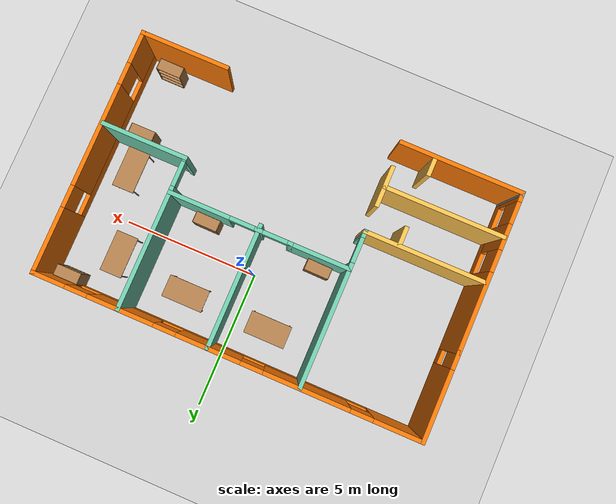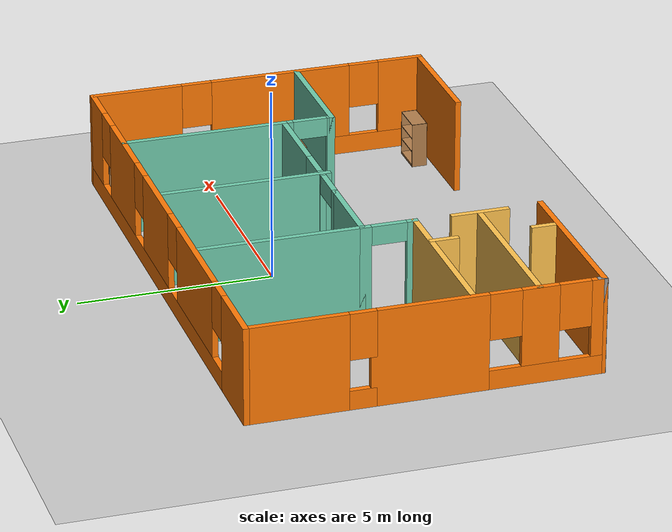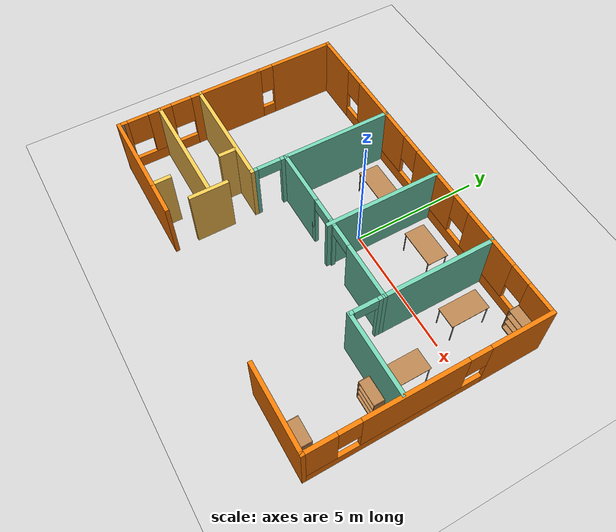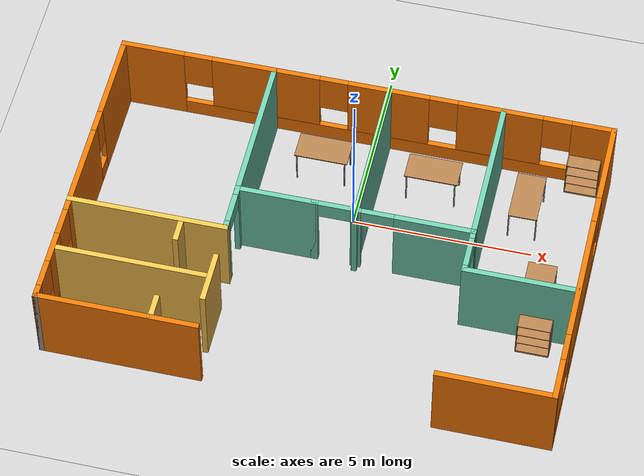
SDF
<sdf version="1.6">
 <world name="default">
  <plugin filename="libcollision_map_creator.so" name="collision_map_creator"/>
  <light name="sun" type="directional">
   <pose>0 0 10 0 -0 0</pose>
   <diffuse>0.8 0.8 0.8 1</diffuse>
   <specular>0.2 0.2 0.2 1</specular>
   <attenuation>
    <range>1000</range>
    <constant>0.9</constant>
    <linear>0.01</linear>
    <quadratic>0.001</quadratic>
   </attenuation>
   <direction>-0.5 0.1 -0.9</direction>
  </light>
  <model name="ground_plane">
   <static>1</static>
   <link name="link">
    <collision name="collision">
     <geometry><plane><normal>0 0 1</normal><size>100 100</size></plane></geometry>
     <surface>
      <contact><collide_bitmask>65535</collide_bitmask></contact>
      <friction><ode><mu>100</mu><mu2>50</mu2></ode></friction>
     </surface>
    </collision>
    <visual name="visual">
     <cast_shadows>0</cast_shadows>
     <geometry><plane><normal>0 0 1</normal><size>100 100</size></plane></geometry>
     <material>
      <script><uri>file://media/materials/scripts/gazebo.material</uri><name>Gazebo/Grey</name></script>
     </material>
    </visual>
   </link>
  </model>
  <gravity>0 0 -9.8</gravity>
  <magnetic_field>6e-06 2.3e-05 -4.2e-05</magnetic_field>
  <atmosphere type="adiabatic"/>
  <physics name="default_physics" default="0" type="ode">
   <max_step_size>0.001</max_step_size>
   <real_time_factor>1</real_time_factor>
   <real_time_update_rate>1000</real_time_update_rate>
  </physics>
  <scene><ambient>0.4 0.4 0.4 1</ambient><background>0.7 0.7 0.7 1</background><shadows>1</shadows></scene>
  <audio><device>default</device></audio>
  <spherical_coordinates>
   <surface_model>EARTH_WGS84</surface_model>
   <latitude_deg>0</latitude_deg>
   <longitude_deg>0</longitude_deg>
   <elevation>0</elevation>
   <heading_deg>0</heading_deg>
  </spherical_coordinates>
  <model name="Office">
   <pose>-0.28608 -1.61018 0 0 -0 0</pose>
   <link name="Wall_0">
    <pose>-6.925 2.875 0 0 -0 -1.5708</pose>
    <visual name="Wall_0_Visual_0">
     <pose>-0.334163 0 1.25 0 -0 0</pose>
     <geometry><box><size>2.58167 0.15 2.5</size></box></geometry>
     <material>
      <script><uri>file://media/materials/scripts/gazebo.material</uri><name>Gazebo/Grey</name></script>
      <ambient>0.996078 0.47451 0.0196078 1</ambient>
     </material>
     <meta><layer>0</layer></meta>
    </visual>
    <collision name="Wall_0_Collision_0">
     <geometry><box><size>2.58167 0.15 2.5</size></box></geometry>
     <pose>-0.334163 0 1.25 0 -0 0</pose>
    </collision>
    <visual name="Wall_0_Visual_1">
     <pose>1.29084 0 0.25 0 -0 0</pose>
     <geometry><box><size>0.668327 0.15 0.5</size></box></geometry>
     <material>
      <script><uri>file://media/materials/scripts/gazebo.material</uri><name>Gazebo/Grey</name></script>
      <ambient>0.996078 0.47451 0.0196078 1</ambient>
     </material>
     <meta><layer>0</layer></meta>
    </visual>
    <collision name="Wall_0_Collision_1">
     <geometry><box><size>0.668327 0.15 0.5</size></box></geometry>
     <pose>1.29084 0 0.25 0 -0 0</pose>
    </collision>
    <visual name="Wall_0_Visual_2">
     <pose>1.29084 0 1.9 0 -0 0</pose>
     <geometry><box><size>0.668327 0.15 1.2</size></box></geometry>
     <material>
      <script><uri>file://media/materials/scripts/gazebo.material</uri><name>Gazebo/Grey</name></script>
      <ambient>0.996078 0.47451 0.0196078 1</ambient>
     </material>
     <meta><layer>0</layer></meta>
    </visual>
    <collision name="Wall_0_Collision_2">
     <geometry><box><size>0.668327 0.15 1.2</size></box></geometry>
     <pose>1.29084 0 1.9 0 -0 0</pose>
    </collision>
   </link>
   <link name="Wall_1">
    <pose>-6.925 -1.475 0 0 -0 -1.5708</pose>
    <visual name="Wall_1_Visual_0">
     <pose>-1.41558 0 1.25 0 -0 0</pose>
     <geometry><box><size>2.91885 0.15 2.5</size></box></geometry>
     <material>
      <script><uri>file://media/materials/scripts/gazebo.material</uri><name>Gazebo/Grey</name></script>
      <ambient>0.996078 0.47451 0.0196078 1</ambient>
     </material>
     <meta><layer>0</layer></meta>
    </visual>
    <collision name="Wall_1_Collision_0">
     <geometry><box><size>2.91885 0.15 2.5</size></box></geometry>
     <pose>-1.41558 0 1.25 0 -0 0</pose>
    </collision>
    <visual name="Wall_1_Visual_1">
     <pose>1.45942 0 0.25 0 -0 0</pose>
     <geometry><box><size>2.83115 0.15 0.5</size></box></geometry>
     <material>
      <script><uri>file://media/materials/scripts/gazebo.material</uri><name>Gazebo/Grey</name></script>
      <ambient>0.996078 0.47451 0.0196078 1</ambient>
     </material>
     <meta><layer>0</layer></meta>
    </visual>
    <collision name="Wall_1_Collision_1">
     <geometry><box><size>2.83115 0.15 0.5</size></box></geometry>
     <pose>1.45942 0 0.25 0 -0 0</pose>
    </collision>
    <visual name="Wall_1_Visual_2">
     <pose>1.31075 0 1.5 0 -0 0</pose>
     <geometry><box><size>0.933798 0.15 2</size></box></geometry>
     <material>
      <script><uri>file://media/materials/scripts/gazebo.material</uri><name>Gazebo/Grey</name></script>
      <ambient>0.996078 0.47451 0.0196078 1</ambient>
     </material>
     <meta><layer>0</layer></meta>
    </visual>
    <collision name="Wall_1_Collision_2">
     <geometry><box><size>0.933798 0.15 2</size></box></geometry>
     <pose>1.31075 0 1.5 0 -0 0</pose>
    </collision>
    <visual name="Wall_1_Visual_3">
     <pose>2.72632 0 1.5 0 -0 0</pose>
     <geometry><box><size>0.297352 0.15 2</size></box></geometry>
     <material>
      <script><uri>file://media/materials/scripts/gazebo.material</uri><name>Gazebo/Grey</name></script>
      <ambient>0.996078 0.47451 0.0196078 1</ambient>
     </material>
     <meta><layer>0</layer></meta>
    </visual>
    <collision name="Wall_1_Collision_3">
     <geometry><box><size>0.297352 0.15 2</size></box></geometry>
     <pose>2.72632 0 1.5 0 -0 0</pose>
    </collision>
    <visual name="Wall_1_Visual_4">
     <pose>0.443851 0 1.9 0 -0 0</pose>
     <geometry><box><size>0.8 0.15 1.2</size></box></geometry>
     <material>
      <script><uri>file://media/materials/scripts/gazebo.material</uri><name>Gazebo/Grey</name></script>
      <ambient>0.996078 0.47451 0.0196078 1</ambient>
     </material>
     <meta><layer>0</layer></meta>
    </visual>
    <collision name="Wall_1_Collision_4">
     <geometry><box><size>0.8 0.15 1.2</size></box></geometry>
     <pose>0.443851 0 1.9 0 -0 0</pose>
    </collision>
    <visual name="Wall_1_Visual_5">
     <pose>2.17765 0 1.9 0 -0 0</pose>
     <geometry><box><size>0.8 0.15 1.2</size></box></geometry>
     <material>
      <script><uri>file://media/materials/scripts/gazebo.material</uri><name>Gazebo/Grey</name></script>
      <ambient>0.996078 0.47451 0.0196078 1</ambient>
     </material>
     <meta><layer>0</layer></meta>
    </visual>
    <collision name="Wall_1_Collision_5">
     <geometry><box><size>0.8 0.15 1.2</size></box></geometry>
     <pose>2.17765 0 1.9 0 -0 0</pose>
    </collision>
   </link>
   <link name="Wall_10">
    <collision name="Wall_10_Collision">
     <geometry><box><size>4.4 0.15 2.5</size></box></geometry>
     <pose>0 0 1.25 0 -0 0</pose>
    </collision>
    <visual name="Wall_10_Visual">
     <pose>0 0 1.25 0 -0 0</pose>
     <geometry><box><size>4.4 0.15 2.5</size></box></geometry>
     <material>
      <script><uri>file://media/materials/scripts/gazebo.material</uri><name>Gazebo/Grey</name></script>
      <ambient>1 0.764706 0.305882 1</ambient>
     </material>
     <meta><layer>0</layer></meta>
    </visual>
    <pose>-4.77879 -2.76026 0 0 -0 0</pose>
   </link>
   <link name="Wall_12">
    <collision name="Wall_12_Collision">
     <geometry><box><size>1.5 0.15 2.5</size></box></geometry>
     <pose>0 0 1.25 0 -0 0</pose>
    </collision>
    <visual name="Wall_12_Visual">
     <pose>0 0 1.25 0 -0 0</pose>
     <geometry><box><size>1.5 0.15 2.5</size></box></geometry>
     <material>
      <script><uri>file://media/materials/scripts/gazebo.material</uri><name>Gazebo/Grey</name></script>
      <ambient>1 0.764706 0.305882 1</ambient>
     </material>
     <meta><layer>0</layer></meta>
    </visual>
    <pose>-2.62966 -2.78159 0 0 -0 -1.5708</pose>
   </link>
   <link name="Wall_14">
    <collision name="Wall_14_Collision">
     <geometry><box><size>4.46141 0.15 2.5</size></box></geometry>
     <pose>0 0 1.25 0 -0 0</pose>
    </collision>
    <visual name="Wall_14_Visual">
     <pose>0 0 1.25 0 -0 0</pose>
     <geometry><box><size>4.46141 0.15 2.5</size></box></geometry>
     <material>
      <script><uri>file://media/materials/scripts/gazebo.material</uri><name>Gazebo/Grey</name></script>
      <ambient>1 0.764706 0.305882 1</ambient>
     </material>
     <meta><layer>0</layer></meta>
    </visual>
    <pose>-4.76929 -1.12826 0 0 -0 0</pose>
   </link>
   <link name="Wall_17">
    <collision name="Wall_17_Collision">
     <geometry><box><size>0.75 0.15 2.5</size></box></geometry>
     <pose>0 0 1.25 0 -0 0</pose>
    </collision>
    <visual name="Wall_17_Visual">
     <pose>0 0 1.25 0 -0 0</pose>
     <geometry><box><size>0.75 0.15 2.5</size></box></geometry>
     <material>
      <script><uri>file://media/materials/scripts/gazebo.material</uri><name>Gazebo/Grey</name></script>
      <ambient>1 0.764706 0.305882 1</ambient>
     </material>
     <meta><layer>0</layer></meta>
    </visual>
    <pose>-3.81733 -1.45488 0 0 -0 -1.5708</pose>
   </link>
   <link name="Wall_19">
    <collision name="Wall_19_Collision">
     <geometry><box><size>0.75 0.15 2.5</size></box></geometry>
     <pose>0 0 1.25 0 -0 0</pose>
    </collision>
    <visual name="Wall_19_Visual">
     <pose>0 0 1.25 0 -0 0</pose>
     <geometry><box><size>0.75 0.15 2.5</size></box></geometry>
     <material>
      <script><uri>file://media/materials/scripts/gazebo.material</uri><name>Gazebo/Grey</name></script>
      <ambient>1 0.764706 0.305882 1</ambient>
     </material>
     <meta><layer>0</layer></meta>
    </visual>
    <pose>-3.81733 -4.0421 0 0 -0 1.5708</pose>
   </link>
   <link name="Wall_2">
    <collision name="Wall_2_Collision">
     <geometry><box><size>0.25 0.15 2.5</size></box></geometry>
     <pose>0 0 1.25 0 -0 0</pose>
    </collision>
    <visual name="Wall_2_Visual">
     <pose>0 0 1.25 0 -0 0</pose>
     <geometry><box><size>0.25 0.15 2.5</size></box></geometry>
     <material>
      <script><uri>file://media/materials/scripts/gazebo.material</uri><name>Gazebo/Grey</name></script>
      <ambient>1 1 1 1</ambient>
     </material>
     <meta><layer>0</layer></meta>
    </visual>
    <pose>-6.925 -4.325 0 0 -0 -1.5708</pose>
   </link>
   <link name="Wall_21">
    <collision name="Wall_21_Collision">
     <geometry><box><size>4.31663 0.15 2.5</size></box></geometry>
     <pose>0 0 1.25 0 -0 0</pose>
    </collision>
    <visual name="Wall_21_Visual">
     <pose>0 0 1.25 0 -0 0</pose>
     <geometry><box><size>4.31663 0.15 2.5</size></box></geometry>
     <material>
      <script><uri>file://media/materials/scripts/gazebo.material</uri><name>Gazebo/Grey</name></script>
      <ambient>0.435294 0.796078 0.67451 1</ambient>
     </material>
     <meta><layer>0</layer></meta>
    </visual>
    <pose>-2.61382 2.30206 0 0 -0 1.57081</pose>
   </link>
   <link name="Wall_23">
    <collision name="Wall_23_Collision">
     <geometry><box><size>2.25 0.15 2.5</size></box></geometry>
     <pose>0 0 1.25 0 -0 0</pose>
    </collision>
    <visual name="Wall_23_Visual">
     <pose>0 0 1.25 0 -0 0</pose>
     <geometry><box><size>2.25 0.15 2.5</size></box></geometry>
     <material>
      <script><uri>file://media/materials/scripts/gazebo.material</uri><name>Gazebo/Grey</name></script>
      <ambient>0.435294 0.796078 0.67451 1</ambient>
     </material>
     <meta><layer>0</layer></meta>
    </visual>
    <pose>-1.56379 0.218742 0 0 -0 0</pose>
   </link>
   <link name="Wall_25">
    <collision name="Wall_25_Collision">
     <geometry><box><size>4.5 0.15 2.5</size></box></geometry>
     <pose>0 0 1.25 0 -0 0</pose>
    </collision>
    <visual name="Wall_25_Visual">
     <pose>0 0 1.25 0 -0 0</pose>
     <geometry><box><size>4.5 0.15 2.5</size></box></geometry>
     <material>
      <script><uri>file://media/materials/scripts/gazebo.material</uri><name>Gazebo/Grey</name></script>
      <ambient>0.435294 0.796078 0.67451 1</ambient>
     </material>
     <meta><layer>0</layer></meta>
    </visual>
    <pose>0.654702 2.23299 0 0 -0 -1.5708</pose>
   </link>
   <link name="Wall_27">
    <collision name="Wall_27_Collision">
     <geometry><box><size>4.33925 0.15 2.5</size></box></geometry>
     <pose>0 0 1.25 0 -0 0</pose>
    </collision>
    <visual name="Wall_27_Visual">
     <pose>0 0 1.25 0 -0 0</pose>
     <geometry><box><size>4.33925 0.15 2.5</size></box></geometry>
     <material>
      <script><uri>file://media/materials/scripts/gazebo.material</uri><name>Gazebo/Grey</name></script>
      <ambient>0.435294 0.796078 0.67451 1</ambient>
     </material>
     <meta><layer>0</layer></meta>
    </visual>
    <pose>3.86398 2.31337 0 0 -0 -1.57069</pose>
   </link>
   <link name="Wall_3">
    <collision name="Wall_3_Collision">
     <geometry><box><size>4.5 0.15 2.5</size></box></geometry>
     <pose>0 0 1.25 0 -0 0</pose>
    </collision>
    <visual name="Wall_3_Visual">
     <pose>0 0 1.25 0 -0 0</pose>
     <geometry><box><size>4.5 0.15 2.5</size></box></geometry>
     <material>
      <script><uri>file://media/materials/scripts/gazebo.material</uri><name>Gazebo/Grey</name></script>
      <ambient>0.996078 0.47451 0.0196078 1</ambient>
     </material>
     <meta><layer>0</layer></meta>
    </visual>
    <pose>-4.75 -4.375 0 0 -0 0</pose>
   </link>
   <link name="Wall_30">
    <pose>3.86421 -0.411758 0 0 -0 -1.5708</pose>
    <visual name="Wall_30_Visual_0">
     <pose>-0.553247 0 1.25 0 -0 0</pose>
     <geometry><box><size>0.304505 0.15 2.5</size></box></geometry>
     <material>
      <script><uri>file://media/materials/scripts/gazebo.material</uri><name>Gazebo/Grey</name></script>
      <ambient>0.435294 0.796078 0.67451 1</ambient>
     </material>
     <meta><layer>0</layer></meta>
    </visual>
    <collision name="Wall_30_Collision_0">
     <geometry><box><size>0.304505 0.15 2.5</size></box></geometry>
     <pose>-0.553247 0 1.25 0 -0 0</pose>
    </collision>
    <visual name="Wall_30_Visual_1">
     <pose>0.602253 0 1.25 0 -0 0</pose>
     <geometry><box><size>0.206495 0.15 2.5</size></box></geometry>
     <material>
      <script><uri>file://media/materials/scripts/gazebo.material</uri><name>Gazebo/Grey</name></script>
      <ambient>0.435294 0.796078 0.67451 1</ambient>
     </material>
     <meta><layer>0</layer></meta>
    </visual>
    <collision name="Wall_30_Collision_1">
     <geometry><box><size>0.206495 0.15 2.5</size></box></geometry>
     <pose>0.602253 0 1.25 0 -0 0</pose>
    </collision>
    <visual name="Wall_30_Visual_2">
     <pose>0.049005 0 2.25 0 -0 0</pose>
     <geometry><box><size>0.9 0.15 0.5</size></box></geometry>
     <material>
      <script><uri>file://media/materials/scripts/gazebo.material</uri><name>Gazebo/Grey</name></script>
      <ambient>0.435294 0.796078 0.67451 1</ambient>
     </material>
     <meta><layer>0</layer></meta>
    </visual>
    <collision name="Wall_30_Collision_2">
     <geometry><box><size>0.9 0.15 0.5</size></box></geometry>
     <pose>0.049005 0 2.25 0 -0 0</pose>
    </collision>
   </link>
   <link name="Wall_31">
    <collision name="Wall_31_Collision">
     <geometry><box><size>3.15 0.15 2.5</size></box></geometry>
     <pose>0 0 1.25 0 -0 0</pose>
    </collision>
    <visual name="Wall_31_Visual">
     <pose>0 0 1.25 0 -0 0</pose>
     <geometry><box><size>3.15 0.15 2.5</size></box></geometry>
     <material>
      <script><uri>file://media/materials/scripts/gazebo.material</uri><name>Gazebo/Grey</name></script>
      <ambient>0.435294 0.796078 0.67451 1</ambient>
     </material>
     <meta><layer>0</layer></meta>
    </visual>
    <pose>5.36421 -1.04226 0 0 -0 0</pose>
   </link>
   <link name="Wall_35">
    <pose>1.67521 0.218742 0 0 -0 0</pose>
    <visual name="Wall_35_Visual_0">
     <pose>-2.16383 0 1.25 0 -0 0</pose>
     <geometry><box><size>0.20035 0.15 2.5</size></box></geometry>
     <material>
      <script><uri>file://media/materials/scripts/gazebo.material</uri><name>Gazebo/Grey</name></script>
      <ambient>0.435294 0.796078 0.67451 1</ambient>
     </material>
     <meta><layer>0</layer></meta>
    </visual>
    <collision name="Wall_35_Collision_0">
     <geometry><box><size>0.20035 0.15 2.5</size></box></geometry>
     <pose>-2.16383 0 1.25 0 -0 0</pose>
    </collision>
    <visual name="Wall_35_Visual_1">
     <pose>-1.02051 0 1.25 0 -0 0</pose>
     <geometry><box><size>0.286282 0.15 2.5</size></box></geometry>
     <material>
      <script><uri>file://media/materials/scripts/gazebo.material</uri><name>Gazebo/Grey</name></script>
      <ambient>0.435294 0.796078 0.67451 1</ambient>
     </material>
     <meta><layer>0</layer></meta>
    </visual>
    <collision name="Wall_35_Collision_1">
     <geometry><box><size>0.286282 0.15 2.5</size></box></geometry>
     <pose>-1.02051 0 1.25 0 -0 0</pose>
    </collision>
    <visual name="Wall_35_Visual_2">
     <pose>1.14332 0 1.25 0 -0 0</pose>
     <geometry><box><size>2.24137 0.15 2.5</size></box></geometry>
     <material>
      <script><uri>file://media/materials/scripts/gazebo.material</uri><name>Gazebo/Grey</name></script>
      <ambient>0.435294 0.796078 0.67451 1</ambient>
     </material>
     <meta><layer>0</layer></meta>
    </visual>
    <collision name="Wall_35_Collision_2">
     <geometry><box><size>2.24137 0.15 2.5</size></box></geometry>
     <pose>1.14332 0 1.25 0 -0 0</pose>
    </collision>
    <visual name="Wall_35_Visual_3">
     <pose>-1.61365 0 2.25 0 -0 0</pose>
     <geometry><box><size>0.9 0.15 0.5</size></box></geometry>
     <material>
      <script><uri>file://media/materials/scripts/gazebo.material</uri><name>Gazebo/Grey</name></script>
      <ambient>0.435294 0.796078 0.67451 1</ambient>
     </material>
     <meta><layer>0</layer></meta>
    </visual>
    <collision name="Wall_35_Collision_3">
     <geometry><box><size>0.9 0.15 0.5</size></box></geometry>
     <pose>-1.61365 0 2.25 0 -0 0</pose>
    </collision>
    <visual name="Wall_35_Visual_4">
     <pose>-0.427368 0 2.25 0 -0 0</pose>
     <geometry><box><size>0.9 0.15 0.5</size></box></geometry>
     <material>
      <script><uri>file://media/materials/scripts/gazebo.material</uri><name>Gazebo/Grey</name></script>
      <ambient>0.435294 0.796078 0.67451 1</ambient>
     </material>
     <meta><layer>0</layer></meta>
    </visual>
    <collision name="Wall_35_Collision_4">
     <geometry><box><size>0.9 0.15 0.5</size></box></geometry>
     <pose>-0.427368 0 2.25 0 -0 0</pose>
    </collision>
   </link>
   <link name="Wall_37">
    <pose>-2.61379 -0.454758 0 0 -0 1.5708</pose>
    <visual name="Wall_37_Visual_0">
     <pose>-0.601451 0 1.25 0 -0 0</pose>
     <geometry><box><size>0.294097 0.15 2.5</size></box></geometry>
     <material>
      <script><uri>file://media/materials/scripts/gazebo.material</uri><name>Gazebo/Grey</name></script>
      <ambient>0.435294 0.796078 0.67451 1</ambient>
     </material>
     <meta><layer>0</layer></meta>
    </visual>
    <collision name="Wall_37_Collision_0">
     <geometry><box><size>0.294097 0.15 2.5</size></box></geometry>
     <pose>-0.601451 0 1.25 0 -0 0</pose>
    </collision>
    <visual name="Wall_37_Visual_1">
     <pose>0.597049 0 1.25 0 -0 0</pose>
     <geometry><box><size>0.302903 0.15 2.5</size></box></geometry>
     <material>
      <script><uri>file://media/materials/scripts/gazebo.material</uri><name>Gazebo/Grey</name></script>
      <ambient>0.435294 0.796078 0.67451 1</ambient>
     </material>
     <meta><layer>0</layer></meta>
    </visual>
    <collision name="Wall_37_Collision_1">
     <geometry><box><size>0.302903 0.15 2.5</size></box></geometry>
     <pose>0.597049 0 1.25 0 -0 0</pose>
    </collision>
    <visual name="Wall_37_Visual_2">
     <pose>-0.004403 0 2.25 0 -0 0</pose>
     <geometry><box><size>0.9 0.15 0.5</size></box></geometry>
     <material>
      <script><uri>file://media/materials/scripts/gazebo.material</uri><name>Gazebo/Grey</name></script>
      <ambient>0.435294 0.796078 0.67451 1</ambient>
     </material>
     <meta><layer>0</layer></meta>
    </visual>
    <collision name="Wall_37_Collision_2">
     <geometry><box><size>0.9 0.15 0.5</size></box></geometry>
     <pose>-0.004403 0 2.25 0 -0 0</pose>
    </collision>
   </link>
   <link name="Wall_5">
    <pose>-0 4.425 0 0 -0 0</pose>
    <visual name="Wall_5_Visual_0">
     <pose>-6.09502 0 1.25 0 -0 0</pose>
     <geometry><box><size>1.80997 0.15 2.5</size></box></geometry>
     <material>
      <script><uri>file://media/materials/scripts/gazebo.material</uri><name>Gazebo/Grey</name></script>
      <ambient>0.996078 0.47451 0.0196078 1</ambient>
     </material>
     <meta><layer>0</layer></meta>
    </visual>
    <collision name="Wall_5_Collision_0">
     <geometry><box><size>1.80997 0.15 2.5</size></box></geometry>
     <pose>-6.09502 0 1.25 0 -0 0</pose>
    </collision>
    <visual name="Wall_5_Visual_1">
     <pose>0.904985 0 0.25 0 -0 0</pose>
     <geometry><box><size>12.19 0.15 0.5</size></box></geometry>
     <material>
      <script><uri>file://media/materials/scripts/gazebo.material</uri><name>Gazebo/Grey</name></script>
      <ambient>0.996078 0.47451 0.0196078 1</ambient>
     </material>
     <meta><layer>0</layer></meta>
    </visual>
    <collision name="Wall_5_Collision_1">
     <geometry><box><size>12.19 0.15 0.5</size></box></geometry>
     <pose>0.904985 0 0.25 0 -0 0</pose>
    </collision>
    <visual name="Wall_5_Visual_2">
     <pose>-2.85092 0 1.5 0 -0 0</pose>
     <geometry><box><size>3.07823 0.15 2</size></box></geometry>
     <material>
      <script><uri>file://media/materials/scripts/gazebo.material</uri><name>Gazebo/Grey</name></script>
      <ambient>0.996078 0.47451 0.0196078 1</ambient>
     </material>
     <meta><layer>0</layer></meta>
    </visual>
    <collision name="Wall_5_Collision_2">
     <geometry><box><size>3.07823 0.15 2</size></box></geometry>
     <pose>-2.85092 0 1.5 0 -0 0</pose>
    </collision>
    <visual name="Wall_5_Visual_3">
     <pose>0.639493 0 1.5 0 -0 0</pose>
     <geometry><box><size>2.30259 0.15 2</size></box></geometry>
     <material>
      <script><uri>file://media/materials/scripts/gazebo.material</uri><name>Gazebo/Grey</name></script>
      <ambient>0.996078 0.47451 0.0196078 1</ambient>
     </material>
     <meta><layer>0</layer></meta>
    </visual>
    <collision name="Wall_5_Collision_3">
     <geometry><box><size>2.30259 0.15 2</size></box></geometry>
     <pose>0.639493 0 1.5 0 -0 0</pose>
    </collision>
    <visual name="Wall_5_Visual_4">
     <pose>3.7801 0 1.5 0 -0 0</pose>
     <geometry><box><size>2.37863 0.15 2</size></box></geometry>
     <material>
      <script><uri>file://media/materials/scripts/gazebo.material</uri><name>Gazebo/Grey</name></script>
      <ambient>0.996078 0.47451 0.0196078 1</ambient>
     </material>
     <meta><layer>0</layer></meta>
    </visual>
    <collision name="Wall_5_Collision_4">
     <geometry><box><size>2.37863 0.15 2</size></box></geometry>
     <pose>3.7801 0 1.5 0 -0 0</pose>
    </collision>
    <visual name="Wall_5_Visual_5">
     <pose>6.38471 0 1.5 0 -0 0</pose>
     <geometry><box><size>1.23059 0.15 2</size></box></geometry>
     <material>
      <script><uri>file://media/materials/scripts/gazebo.material</uri><name>Gazebo/Grey</name></script>
      <ambient>0.996078 0.47451 0.0196078 1</ambient>
     </material>
     <meta><layer>0</layer></meta>
    </visual>
    <collision name="Wall_5_Collision_5">
     <geometry><box><size>1.23059 0.15 2</size></box></geometry>
     <pose>6.38471 0 1.5 0 -0 0</pose>
    </collision>
    <visual name="Wall_5_Visual_6">
     <pose>-4.79003 0 1.9 0 -0 0</pose>
     <geometry><box><size>0.8 0.15 1.2</size></box></geometry>
     <material>
      <script><uri>file://media/materials/scripts/gazebo.material</uri><name>Gazebo/Grey</name></script>
      <ambient>0.996078 0.47451 0.0196078 1</ambient>
     </material>
     <meta><layer>0</layer></meta>
    </visual>
    <collision name="Wall_5_Collision_6">
     <geometry><box><size>0.8 0.15 1.2</size></box></geometry>
     <pose>-4.79003 0 1.9 0 -0 0</pose>
    </collision>
    <visual name="Wall_5_Visual_7">
     <pose>-0.911799 0 1.9 0 -0 0</pose>
     <geometry><box><size>0.8 0.15 1.2</size></box></geometry>
     <material>
      <script><uri>file://media/materials/scripts/gazebo.material</uri><name>Gazebo/Grey</name></script>
      <ambient>0.996078 0.47451 0.0196078 1</ambient>
     </material>
     <meta><layer>0</layer></meta>
    </visual>
    <collision name="Wall_5_Collision_7">
     <geometry><box><size>0.8 0.15 1.2</size></box></geometry>
     <pose>-0.911799 0 1.9 0 -0 0</pose>
    </collision>
    <visual name="Wall_5_Visual_8">
     <pose>2.19079 0 1.9 0 -0 0</pose>
     <geometry><box><size>0.8 0.15 1.2</size></box></geometry>
     <material>
      <script><uri>file://media/materials/scripts/gazebo.material</uri><name>Gazebo/Grey</name></script>
      <ambient>0.996078 0.47451 0.0196078 1</ambient>
     </material>
     <meta><layer>0</layer></meta>
    </visual>
    <collision name="Wall_5_Collision_8">
     <geometry><box><size>0.8 0.15 1.2</size></box></geometry>
     <pose>2.19079 0 1.9 0 -0 0</pose>
    </collision>
    <visual name="Wall_5_Visual_9">
     <pose>5.36942 0 1.9 0 -0 0</pose>
     <geometry><box><size>0.8 0.15 1.2</size></box></geometry>
     <material>
      <script><uri>file://media/materials/scripts/gazebo.material</uri><name>Gazebo/Grey</name></script>
      <ambient>0.996078 0.47451 0.0196078 1</ambient>
     </material>
     <meta><layer>0</layer></meta>
    </visual>
    <collision name="Wall_5_Collision_9">
     <geometry><box><size>0.8 0.15 1.2</size></box></geometry>
     <pose>5.36942 0 1.9 0 -0 0</pose>
    </collision>
   </link>
   <link name="Wall_7">
    <pose>6.925 0 0 0 -0 -1.5708</pose>
    <visual name="Wall_7_Visual_0">
     <pose>-3.28521 0 1.25 0 -0 0</pose>
     <geometry><box><size>2.42959 0.15 2.5</size></box></geometry>
     <material>
      <script><uri>file://media/materials/scripts/gazebo.material</uri><name>Gazebo/Grey</name></script>
      <ambient>0.996078 0.47451 0.0196078 1</ambient>
     </material>
     <meta><layer>0</layer></meta>
    </visual>
    <collision name="Wall_7_Collision_0">
     <geometry><box><size>2.42959 0.15 2.5</size></box></geometry>
     <pose>-3.28521 0 1.25 0 -0 0</pose>
    </collision>
    <visual name="Wall_7_Visual_1">
     <pose>1.21479 0 0.25 0 -0 0</pose>
     <geometry><box><size>6.57041 0.15 0.5</size></box></geometry>
     <material>
      <script><uri>file://media/materials/scripts/gazebo.material</uri><name>Gazebo/Grey</name></script>
      <ambient>0.996078 0.47451 0.0196078 1</ambient>
     </material>
     <meta><layer>0</layer></meta>
    </visual>
    <collision name="Wall_7_Collision_1">
     <geometry><box><size>6.57041 0.15 0.5</size></box></geometry>
     <pose>1.21479 0 0.25 0 -0 0</pose>
    </collision>
    <visual name="Wall_7_Visual_2">
     <pose>0.603294 0 1.5 0 -0 0</pose>
     <geometry><box><size>3.74742 0.15 2</size></box></geometry>
     <material>
      <script><uri>file://media/materials/scripts/gazebo.material</uri><name>Gazebo/Grey</name></script>
      <ambient>0.996078 0.47451 0.0196078 1</ambient>
     </material>
     <meta><layer>0</layer></meta>
    </visual>
    <collision name="Wall_7_Collision_2">
     <geometry><box><size>3.74742 0.15 2</size></box></geometry>
     <pose>0.603294 0 1.5 0 -0 0</pose>
    </collision>
    <visual name="Wall_7_Visual_3">
     <pose>3.8885 0 1.5 0 -0 0</pose>
     <geometry><box><size>1.223 0.15 2</size></box></geometry>
     <material>
      <script><uri>file://media/materials/scripts/gazebo.material</uri><name>Gazebo/Grey</name></script>
      <ambient>0.996078 0.47451 0.0196078 1</ambient>
     </material>
     <meta><layer>0</layer></meta>
    </visual>
    <collision name="Wall_7_Collision_3">
     <geometry><box><size>1.223 0.15 2</size></box></geometry>
     <pose>3.8885 0 1.5 0 -0 0</pose>
    </collision>
    <visual name="Wall_7_Visual_4">
     <pose>-1.67041 0 1.9 0 -0 0</pose>
     <geometry><box><size>0.8 0.15 1.2</size></box></geometry>
     <material>
      <script><uri>file://media/materials/scripts/gazebo.material</uri><name>Gazebo/Grey</name></script>
      <ambient>0.996078 0.47451 0.0196078 1</ambient>
     </material>
     <meta><layer>0</layer></meta>
    </visual>
    <collision name="Wall_7_Collision_4">
     <geometry><box><size>0.8 0.15 1.2</size></box></geometry>
     <pose>-1.67041 0 1.9 0 -0 0</pose>
    </collision>
    <visual name="Wall_7_Visual_5">
     <pose>2.877 0 1.9 0 -0 0</pose>
     <geometry><box><size>0.8 0.15 1.2</size></box></geometry>
     <material>
      <script><uri>file://media/materials/scripts/gazebo.material</uri><name>Gazebo/Grey</name></script>
      <ambient>0.996078 0.47451 0.0196078 1</ambient>
     </material>
     <meta><layer>0</layer></meta>
    </visual>
    <collision name="Wall_7_Collision_5">
     <geometry><box><size>0.8 0.15 1.2</size></box></geometry>
     <pose>2.877 0 1.9 0 -0 0</pose>
    </collision>
   </link>
   <link name="Wall_8">
    <collision name="Wall_8_Collision">
     <geometry><box><size>3.25 0.15 2.5</size></box></geometry>
     <pose>0 0 1.25 0 -0 0</pose>
    </collision>
    <visual name="Wall_8_Visual">
     <pose>0 0 1.25 0 -0 0</pose>
     <geometry><box><size>3.25 0.15 2.5</size></box></geometry>
     <material>
      <script><uri>file://media/materials/scripts/gazebo.material</uri><name>Gazebo/Grey</name></script>
      <ambient>0.996078 0.47451 0.0196078 1</ambient>
     </material>
     <meta><layer>0</layer></meta>
    </visual>
    <pose>5.375 -4.425 0 0 -0 3.14159</pose>
   </link>
   <static>1</static>
  </model>
  <model name="bookshelf">
   <static>1</static>
   <link name="link">
    <inertial><mass>1</mass></inertial>
    <collision name="back">
     <pose>0 0.005 0.6 0 -0 0</pose>
     <geometry><box><size>0.9 0.01 1.2</size></box></geometry>
    </collision>
    <visual name="visual1">
     <pose>0 0.005 0.6 0 -0 0</pose>
     <geometry><box><size>0.9 0.01 1.2</size></box></geometry>
     <material>
      <script><uri>file://media/materials/scripts/gazebo.material</uri><name>Gazebo/Wood</name></script>
     </material>
    </visual>
    <collision name="left_side">
     <pose>0.45 -0.195 0.6 0 -0 0</pose>
     <geometry><box><size>0.02 0.4 1.2</size></box></geometry>
    </collision>
    <visual name="visual2">
     <pose>0.45 -0.195 0.6 0 -0 0</pose>
     <geometry><box><size>0.02 0.4 1.2</size></box></geometry>
     <material>
      <script><uri>file://media/materials/scripts/gazebo.material</uri><name>Gazebo/Wood</name></script>
     </material>
    </visual>
    <collision name="right_side">
     <pose>-0.45 -0.195 0.6 0 -0 0</pose>
     <geometry><box><size>0.02 0.4 1.2</size></box></geometry>
    </collision>
    <visual name="visual3">
     <pose>-0.45 -0.195 0.6 0 -0 0</pose>
     <geometry><box><size>0.02 0.4 1.2</size></box></geometry>
     <material>
      <script><uri>file://media/materials/scripts/gazebo.material</uri><name>Gazebo/Wood</name></script>
     </material>
    </visual>
    <collision name="bottom">
     <pose>0 -0.195 0.03 0 -0 0</pose>
     <geometry><box><size>0.88 0.4 0.06</size></box></geometry>
    </collision>
    <visual name="visual4">
     <pose>0 -0.195 0.03 0 -0 0</pose>
     <geometry><box><size>0.88 0.4 0.06</size></box></geometry>
     <material>
      <script><uri>file://media/materials/scripts/gazebo.material</uri><name>Gazebo/Wood</name></script>
     </material>
    </visual>
    <collision name="top">
     <pose>0 -0.195 1.19 0 -0 0</pose>
     <geometry><box><size>0.88 0.4 0.02</size></box></geometry>
    </collision>
    <visual name="visual5">
     <pose>0 -0.195 1.19 0 -0 0</pose>
     <geometry><box><size>0.88 0.4 0.02</size></box></geometry>
     <material>
      <script><uri>file://media/materials/scripts/gazebo.material</uri><name>Gazebo/Wood</name></script>
     </material>
    </visual>
    <collision name="low_shelf">
     <pose>0 -0.195 0.43 0 -0 0</pose>
     <geometry><box><size>0.88 0.4 0.02</size></box></geometry>
    </collision>
    <visual name="visual6">
     <pose>0 -0.195 0.43 0 -0 0</pose>
     <geometry><box><size>0.88 0.4 0.02</size></box></geometry>
     <material>
      <script><uri>file://media/materials/scripts/gazebo.material</uri><name>Gazebo/Wood</name></script>
     </material>
    </visual>
    <collision name="high_shelf">
     <pose>0 -0.195 0.8 0 -0 0</pose>
     <geometry><box><size>0.88 0.4 0.02</size></box></geometry>
    </collision>
    <visual name="visual7">
     <pose>0 -0.195 0.8 0 -0 0</pose>
     <geometry><box><size>0.88 0.4 0.02</size></box></geometry>
     <material>
      <script><uri>file://media/materials/scripts/gazebo.material</uri><name>Gazebo/Wood</name></script>
     </material>
    </visual>
   </link>
   <pose>-1.98633 -1.26613 0 0 -0 3.12871</pose>
  </model>
  <model name="bookshelf_0">
   <static>1</static>
   <link name="link">
    <inertial><mass>1</mass></inertial>
    <collision name="back">
     <pose>0 0.005 0.6 0 -0 0</pose>
     <geometry><box><size>0.9 0.01 1.2</size></box></geometry>
    </collision>
    <visual name="visual1">
     <pose>0 0.005 0.6 0 -0 0</pose>
     <geometry><box><size>0.9 0.01 1.2</size></box></geometry>
     <material>
      <script><uri>file://media/materials/scripts/gazebo.material</uri><name>Gazebo/Wood</name></script>
     </material>
    </visual>
    <collision name="left_side">
     <pose>0.45 -0.195 0.6 0 -0 0</pose>
     <geometry><box><size>0.02 0.4 1.2</size></box></geometry>
    </collision>
    <visual name="visual2">
     <pose>0.45 -0.195 0.6 0 -0 0</pose>
     <geometry><box><size>0.02 0.4 1.2</size></box></geometry>
     <material>
      <script><uri>file://media/materials/scripts/gazebo.material</uri><name>Gazebo/Wood</name></script>
     </material>
    </visual>
    <collision name="right_side">
     <pose>-0.45 -0.195 0.6 0 -0 0</pose>
     <geometry><box><size>0.02 0.4 1.2</size></box></geometry>
    </collision>
    <visual name="visual3">
     <pose>-0.45 -0.195 0.6 0 -0 0</pose>
     <geometry><box><size>0.02 0.4 1.2</size></box></geometry>
     <material>
      <script><uri>file://media/materials/scripts/gazebo.material</uri><name>Gazebo/Wood</name></script>
     </material>
    </visual>
    <collision name="bottom">
     <pose>0 -0.195 0.03 0 -0 0</pose>
     <geometry><box><size>0.88 0.4 0.06</size></box></geometry>
    </collision>
    <visual name="visual4">
     <pose>0 -0.195 0.03 0 -0 0</pose>
     <geometry><box><size>0.88 0.4 0.06</size></box></geometry>
     <material>
      <script><uri>file://media/materials/scripts/gazebo.material</uri><name>Gazebo/Wood</name></script>
     </material>
    </visual>
    <collision name="top">
     <pose>0 -0.195 1.19 0 -0 0</pose>
     <geometry><box><size>0.88 0.4 0.02</size></box></geometry>
    </collision>
    <visual name="visual5">
     <pose>0 -0.195 1.19 0 -0 0</pose>
     <geometry><box><size>0.88 0.4 0.02</size></box></geometry>
     <material>
      <script><uri>file://media/materials/scripts/gazebo.material</uri><name>Gazebo/Wood</name></script>
     </material>
    </visual>
    <collision name="low_shelf">
     <pose>0 -0.195 0.43 0 -0 0</pose>
     <geometry><box><size>0.88 0.4 0.02</size></box></geometry>
    </collision>
    <visual name="visual6">
     <pose>0 -0.195 0.43 0 -0 0</pose>
     <geometry><box><size>0.88 0.4 0.02</size></box></geometry>
     <material>
      <script><uri>file://media/materials/scripts/gazebo.material</uri><name>Gazebo/Wood</name></script>
     </material>
    </visual>
    <collision name="high_shelf">
     <pose>0 -0.195 0.8 0 -0 0</pose>
     <geometry><box><size>0.88 0.4 0.02</size></box></geometry>
    </collision>
    <visual name="visual7">
     <pose>0 -0.195 0.8 0 -0 0</pose>
     <geometry><box><size>0.88 0.4 0.02</size></box></geometry>
     <material>
      <script><uri>file://media/materials/scripts/gazebo.material</uri><name>Gazebo/Wood</name></script>
     </material>
    </visual>
   </link>
   <pose>2.24465 -1.25916 0 0 -0 3.13222</pose>
  </model>
  <model name="bookshelf_1">
   <static>1</static>
   <link name="link">
    <inertial><mass>1</mass></inertial>
    <collision name="back">
     <pose>0 0.005 0.6 0 -0 0</pose>
     <geometry><box><size>0.9 0.01 1.2</size></box></geometry>
    </collision>
    <visual name="visual1">
     <pose>0 0.005 0.6 0 -0 0</pose>
     <geometry><box><size>0.9 0.01 1.2</size></box></geometry>
     <material>
      <script><uri>file://media/materials/scripts/gazebo.material</uri><name>Gazebo/Wood</name></script>
     </material>
    </visual>
    <collision name="left_side">
     <pose>0.45 -0.195 0.6 0 -0 0</pose>
     <geometry><box><size>0.02 0.4 1.2</size></box></geometry>
    </collision>
    <visual name="visual2">
     <pose>0.45 -0.195 0.6 0 -0 0</pose>
     <geometry><box><size>0.02 0.4 1.2</size></box></geometry>
     <material>
      <script><uri>file://media/materials/scripts/gazebo.material</uri><name>Gazebo/Wood</name></script>
     </material>
    </visual>
    <collision name="right_side">
     <pose>-0.45 -0.195 0.6 0 -0 0</pose>
     <geometry><box><size>0.02 0.4 1.2</size></box></geometry>
    </collision>
    <visual name="visual3">
     <pose>-0.45 -0.195 0.6 0 -0 0</pose>
     <geometry><box><size>0.02 0.4 1.2</size></box></geometry>
     <material>
      <script><uri>file://media/materials/scripts/gazebo.material</uri><name>Gazebo/Wood</name></script>
     </material>
    </visual>
    <collision name="bottom">
     <pose>0 -0.195 0.03 0 -0 0</pose>
     <geometry><box><size>0.88 0.4 0.06</size></box></geometry>
    </collision>
    <visual name="visual4">
     <pose>0 -0.195 0.03 0 -0 0</pose>
     <geometry><box><size>0.88 0.4 0.06</size></box></geometry>
     <material>
      <script><uri>file://media/materials/scripts/gazebo.material</uri><name>Gazebo/Wood</name></script>
     </material>
    </visual>
    <collision name="top">
     <pose>0 -0.195 1.19 0 -0 0</pose>
     <geometry><box><size>0.88 0.4 0.02</size></box></geometry>
    </collision>
    <visual name="visual5">
     <pose>0 -0.195 1.19 0 -0 0</pose>
     <geometry><box><size>0.88 0.4 0.02</size></box></geometry>
     <material>
      <script><uri>file://media/materials/scripts/gazebo.material</uri><name>Gazebo/Wood</name></script>
     </material>
    </visual>
    <collision name="low_shelf">
     <pose>0 -0.195 0.43 0 -0 0</pose>
     <geometry><box><size>0.88 0.4 0.02</size></box></geometry>
    </collision>
    <visual name="visual6">
     <pose>0 -0.195 0.43 0 -0 0</pose>
     <geometry><box><size>0.88 0.4 0.02</size></box></geometry>
     <material>
      <script><uri>file://media/materials/scripts/gazebo.material</uri><name>Gazebo/Wood</name></script>
     </material>
    </visual>
    <collision name="high_shelf">
     <pose>0 -0.195 0.8 0 -0 0</pose>
     <geometry><box><size>0.88 0.4 0.02</size></box></geometry>
    </collision>
    <visual name="visual7">
     <pose>0 -0.195 0.8 0 -0 0</pose>
     <geometry><box><size>0.88 0.4 0.02</size></box></geometry>
     <material>
      <script><uri>file://media/materials/scripts/gazebo.material</uri><name>Gazebo/Wood</name></script>
     </material>
    </visual>
   </link>
   <pose>5.94668 2.71719 0 0 -0 0</pose>
  </model>
  <model name="bookshelf_2">
   <static>1</static>
   <link name="link">
    <inertial><mass>1</mass></inertial>
    <collision name="back">
     <pose>0 0.005 0.6 0 -0 0</pose>
     <geometry><box><size>0.9 0.01 1.2</size></box></geometry>
    </collision>
    <visual name="visual1">
     <pose>0 0.005 0.6 0 -0 0</pose>
     <geometry><box><size>0.9 0.01 1.2</size></box></geometry>
     <material>
      <script><uri>file://media/materials/scripts/gazebo.material</uri><name>Gazebo/Wood</name></script>
     </material>
    </visual>
    <collision name="left_side">
     <pose>0.45 -0.195 0.6 0 -0 0</pose>
     <geometry><box><size>0.02 0.4 1.2</size></box></geometry>
    </collision>
    <visual name="visual2">
     <pose>0.45 -0.195 0.6 0 -0 0</pose>
     <geometry><box><size>0.02 0.4 1.2</size></box></geometry>
     <material>
      <script><uri>file://media/materials/scripts/gazebo.material</uri><name>Gazebo/Wood</name></script>
     </material>
    </visual>
    <collision name="right_side">
     <pose>-0.45 -0.195 0.6 0 -0 0</pose>
     <geometry><box><size>0.02 0.4 1.2</size></box></geometry>
    </collision>
    <visual name="visual3">
     <pose>-0.45 -0.195 0.6 0 -0 0</pose>
     <geometry><box><size>0.02 0.4 1.2</size></box></geometry>
     <material>
      <script><uri>file://media/materials/scripts/gazebo.material</uri><name>Gazebo/Wood</name></script>
     </material>
    </visual>
    <collision name="bottom">
     <pose>0 -0.195 0.03 0 -0 0</pose>
     <geometry><box><size>0.88 0.4 0.06</size></box></geometry>
    </collision>
    <visual name="visual4">
     <pose>0 -0.195 0.03 0 -0 0</pose>
     <geometry><box><size>0.88 0.4 0.06</size></box></geometry>
     <material>
      <script><uri>file://media/materials/scripts/gazebo.material</uri><name>Gazebo/Wood</name></script>
     </material>
    </visual>
    <collision name="top">
     <pose>0 -0.195 1.19 0 -0 0</pose>
     <geometry><box><size>0.88 0.4 0.02</size></box></geometry>
    </collision>
    <visual name="visual5">
     <pose>0 -0.195 1.19 0 -0 0</pose>
     <geometry><box><size>0.88 0.4 0.02</size></box></geometry>
     <material>
      <script><uri>file://media/materials/scripts/gazebo.material</uri><name>Gazebo/Wood</name></script>
     </material>
    </visual>
    <collision name="low_shelf">
     <pose>0 -0.195 0.43 0 -0 0</pose>
     <geometry><box><size>0.88 0.4 0.02</size></box></geometry>
    </collision>
    <visual name="visual6">
     <pose>0 -0.195 0.43 0 -0 0</pose>
     <geometry><box><size>0.88 0.4 0.02</size></box></geometry>
     <material>
      <script><uri>file://media/materials/scripts/gazebo.material</uri><name>Gazebo/Wood</name></script>
     </material>
    </visual>
    <collision name="high_shelf">
     <pose>0 -0.195 0.8 0 -0 0</pose>
     <geometry><box><size>0.88 0.4 0.02</size></box></geometry>
    </collision>
    <visual name="visual7">
     <pose>0 -0.195 0.8 0 -0 0</pose>
     <geometry><box><size>0.88 0.4 0.02</size></box></geometry>
     <material>
      <script><uri>file://media/materials/scripts/gazebo.material</uri><name>Gazebo/Wood</name></script>
     </material>
    </visual>
   </link>
   <pose>5.62596 -2.85501 0 0 -0 0</pose>
  </model>
  <model name="bookshelf_3">
   <static>1</static>
   <link name="link">
    <inertial><mass>1</mass></inertial>
    <collision name="back">
     <pose>0 0.005 0.6 0 -0 0</pose>
     <geometry><box><size>0.9 0.01 1.2</size></box></geometry>
    </collision>
    <visual name="visual1">
     <pose>0 0.005 0.6 0 -0 0</pose>
     <geometry><box><size>0.9 0.01 1.2</size></box></geometry>
     <material>
      <script><uri>file://media/materials/scripts/gazebo.material</uri><name>Gazebo/Wood</name></script>
     </material>
    </visual>
    <collision name="left_side">
     <pose>0.45 -0.195 0.6 0 -0 0</pose>
     <geometry><box><size>0.02 0.4 1.2</size></box></geometry>
    </collision>
    <visual name="visual2">
     <pose>0.45 -0.195 0.6 0 -0 0</pose>
     <geometry><box><size>0.02 0.4 1.2</size></box></geometry>
     <material>
      <script><uri>file://media/materials/scripts/gazebo.material</uri><name>Gazebo/Wood</name></script>
     </material>
    </visual>
    <collision name="right_side">
     <pose>-0.45 -0.195 0.6 0 -0 0</pose>
     <geometry><box><size>0.02 0.4 1.2</size></box></geometry>
    </collision>
    <visual name="visual3">
     <pose>-0.45 -0.195 0.6 0 -0 0</pose>
     <geometry><box><size>0.02 0.4 1.2</size></box></geometry>
     <material>
      <script><uri>file://media/materials/scripts/gazebo.material</uri><name>Gazebo/Wood</name></script>
     </material>
    </visual>
    <collision name="bottom">
     <pose>0 -0.195 0.03 0 -0 0</pose>
     <geometry><box><size>0.88 0.4 0.06</size></box></geometry>
    </collision>
    <visual name="visual4">
     <pose>0 -0.195 0.03 0 -0 0</pose>
     <geometry><box><size>0.88 0.4 0.06</size></box></geometry>
     <material>
      <script><uri>file://media/materials/scripts/gazebo.material</uri><name>Gazebo/Wood</name></script>
     </material>
    </visual>
    <collision name="top">
     <pose>0 -0.195 1.19 0 -0 0</pose>
     <geometry><box><size>0.88 0.4 0.02</size></box></geometry>
    </collision>
    <visual name="visual5">
     <pose>0 -0.195 1.19 0 -0 0</pose>
     <geometry><box><size>0.88 0.4 0.02</size></box></geometry>
     <material>
      <script><uri>file://media/materials/scripts/gazebo.material</uri><name>Gazebo/Wood</name></script>
     </material>
    </visual>
    <collision name="low_shelf">
     <pose>0 -0.195 0.43 0 -0 0</pose>
     <geometry><box><size>0.88 0.4 0.02</size></box></geometry>
    </collision>
    <visual name="visual6">
     <pose>0 -0.195 0.43 0 -0 0</pose>
     <geometry><box><size>0.88 0.4 0.02</size></box></geometry>
     <material>
      <script><uri>file://media/materials/scripts/gazebo.material</uri><name>Gazebo/Wood</name></script>
     </material>
    </visual>
    <collision name="high_shelf">
     <pose>0 -0.195 0.8 0 -0 0</pose>
     <geometry><box><size>0.88 0.4 0.02</size></box></geometry>
    </collision>
    <visual name="visual7">
     <pose>0 -0.195 0.8 0 -0 0</pose>
     <geometry><box><size>0.88 0.4 0.02</size></box></geometry>
     <material>
      <script><uri>file://media/materials/scripts/gazebo.material</uri><name>Gazebo/Wood</name></script>
     </material>
    </visual>
   </link>
   <pose>5.64689 -5.78173 0 0 -0 3.13668</pose>
  </model>
  <model name="table">
   <static>1</static>
   <link name="link">
    <collision name="surface">
     <pose>0 0 1 0 -0 0</pose>
     <geometry><box><size>1.5 0.8 0.03</size></box></geometry>
     <surface><friction><ode><mu>0.6</mu><mu2>0.6</mu2></ode></friction></surface>
    </collision>
    <visual name="visual1">
     <pose>0 0 1 0 -0 0</pose>
     <geometry><box><size>1.5 0.8 0.03</size></box></geometry>
     <material>
      <script><uri>file://media/materials/scripts/gazebo.material</uri><name>Gazebo/Wood</name></script>
     </material>
    </visual>
    <collision name="front_left_leg">
     <pose>0.68 0.38 0.5 0 -0 0</pose>
     <geometry><cylinder><radius>0.02</radius><length>1</length></cylinder></geometry>
    </collision>
    <visual name="front_left_leg">
     <pose>0.68 0.38 0.5 0 -0 0</pose>
     <geometry><cylinder><radius>0.02</radius><length>1</length></cylinder></geometry>
     <material>
      <script><uri>file://media/materials/scripts/gazebo.material</uri><name>Gazebo/Grey</name></script>
     </material>
    </visual>
    <collision name="front_right_leg">
     <pose>0.68 -0.38 0.5 0 -0 0</pose>
     <geometry><cylinder><radius>0.02</radius><length>1</length></cylinder></geometry>
    </collision>
    <visual name="front_right_leg">
     <pose>0.68 -0.38 0.5 0 -0 0</pose>
     <geometry><cylinder><radius>0.02</radius><length>1</length></cylinder></geometry>
     <material>
      <script><uri>file://media/materials/scripts/gazebo.material</uri><name>Gazebo/Grey</name></script>
     </material>
    </visual>
    <collision name="back_right_leg">
     <pose>-0.68 -0.38 0.5 0 -0 0</pose>
     <geometry><cylinder><radius>0.02</radius><length>1</length></cylinder></geometry>
    </collision>
    <visual name="back_right_leg">
     <pose>-0.68 -0.38 0.5 0 -0 0</pose>
     <geometry><cylinder><radius>0.02</radius><length>1</length></cylinder></geometry>
     <material>
      <script><uri>file://media/materials/scripts/gazebo.material</uri><name>Gazebo/Grey</name></script>
     </material>
    </visual>
    <collision name="back_left_leg">
     <pose>-0.68 0.38 0.5 0 -0 0</pose>
     <geometry><cylinder><radius>0.02</radius><length>1</length></cylinder></geometry>
    </collision>
    <visual name="back_left_leg">
     <pose>-0.68 0.38 0.5 0 -0 0</pose>
     <geometry><cylinder><radius>0.02</radius><length>1</length></cylinder></geometry>
     <material>
      <script><uri>file://media/materials/scripts/gazebo.material</uri><name>Gazebo/Grey</name></script>
     </material>
    </visual>
   </link>
   <pose>-1.20089 1.54502 0 0 -0 0</pose>
  </model>
  <model name="table_0">
   <static>1</static>
   <link name="link">
    <collision name="surface">
     <pose>0 0 1 0 -0 0</pose>
     <geometry><box><size>1.5 0.8 0.03</size></box></geometry>
     <surface><friction><ode><mu>0.6</mu><mu2>0.6</mu2></ode></friction></surface>
    </collision>
    <visual name="visual1">
     <pose>0 0 1 0 -0 0</pose>
     <geometry><box><size>1.5 0.8 0.03</size></box></geometry>
     <material>
      <script><uri>file://media/materials/scripts/gazebo.material</uri><name>Gazebo/Wood</name></script>
     </material>
    </visual>
    <collision name="front_left_leg">
     <pose>0.68 0.38 0.5 0 -0 0</pose>
     <geometry><cylinder><radius>0.02</radius><length>1</length></cylinder></geometry>
    </collision>
    <visual name="front_left_leg">
     <pose>0.68 0.38 0.5 0 -0 0</pose>
     <geometry><cylinder><radius>0.02</radius><length>1</length></cylinder></geometry>
     <material>
      <script><uri>file://media/materials/scripts/gazebo.material</uri><name>Gazebo/Grey</name></script>
     </material>
    </visual>
    <collision name="front_right_leg">
     <pose>0.68 -0.38 0.5 0 -0 0</pose>
     <geometry><cylinder><radius>0.02</radius><length>1</length></cylinder></geometry>
    </collision>
    <visual name="front_right_leg">
     <pose>0.68 -0.38 0.5 0 -0 0</pose>
     <geometry><cylinder><radius>0.02</radius><length>1</length></cylinder></geometry>
     <material>
      <script><uri>file://media/materials/scripts/gazebo.material</uri><name>Gazebo/Grey</name></script>
     </material>
    </visual>
    <collision name="back_right_leg">
     <pose>-0.68 -0.38 0.5 0 -0 0</pose>
     <geometry><cylinder><radius>0.02</radius><length>1</length></cylinder></geometry>
    </collision>
    <visual name="back_right_leg">
     <pose>-0.68 -0.38 0.5 0 -0 0</pose>
     <geometry><cylinder><radius>0.02</radius><length>1</length></cylinder></geometry>
     <material>
      <script><uri>file://media/materials/scripts/gazebo.material</uri><name>Gazebo/Grey</name></script>
     </material>
    </visual>
    <collision name="back_left_leg">
     <pose>-0.68 0.38 0.5 0 -0 0</pose>
     <geometry><cylinder><radius>0.02</radius><length>1</length></cylinder></geometry>
    </collision>
    <visual name="back_left_leg">
     <pose>-0.68 0.38 0.5 0 -0 0</pose>
     <geometry><cylinder><radius>0.02</radius><length>1</length></cylinder></geometry>
     <material>
      <script><uri>file://media/materials/scripts/gazebo.material</uri><name>Gazebo/Grey</name></script>
     </material>
    </visual>
   </link>
   <pose>1.91917 1.52196 0 0 -0 0</pose>
  </model>
  <model name="table_1">
   <static>1</static>
   <link name="link">
    <collision name="surface">
     <pose>0 0 1 0 -0 0</pose>
     <geometry><box><size>1.5 0.8 0.03</size></box></geometry>
     <surface><friction><ode><mu>0.6</mu><mu2>0.6</mu2></ode></friction></surface>
    </collision>
    <visual name="visual1">
     <pose>0 0 1 0 -0 0</pose>
     <geometry><box><size>1.5 0.8 0.03</size></box></geometry>
     <material>
      <script><uri>file://media/materials/scripts/gazebo.material</uri><name>Gazebo/Wood</name></script>
     </material>
    </visual>
    <collision name="front_left_leg">
     <pose>0.68 0.38 0.5 0 -0 0</pose>
     <geometry><cylinder><radius>0.02</radius><length>1</length></cylinder></geometry>
    </collision>
    <visual name="front_left_leg">
     <pose>0.68 0.38 0.5 0 -0 0</pose>
     <geometry><cylinder><radius>0.02</radius><length>1</length></cylinder></geometry>
     <material>
      <script><uri>file://media/materials/scripts/gazebo.material</uri><name>Gazebo/Grey</name></script>
     </material>
    </visual>
    <collision name="front_right_leg">
     <pose>0.68 -0.38 0.5 0 -0 0</pose>
     <geometry><cylinder><radius>0.02</radius><length>1</length></cylinder></geometry>
    </collision>
    <visual name="front_right_leg">
     <pose>0.68 -0.38 0.5 0 -0 0</pose>
     <geometry><cylinder><radius>0.02</radius><length>1</length></cylinder></geometry>
     <material>
      <script><uri>file://media/materials/scripts/gazebo.material</uri><name>Gazebo/Grey</name></script>
     </material>
    </visual>
    <collision name="back_right_leg">
     <pose>-0.68 -0.38 0.5 0 -0 0</pose>
     <geometry><cylinder><radius>0.02</radius><length>1</length></cylinder></geometry>
    </collision>
    <visual name="back_right_leg">
     <pose>-0.68 -0.38 0.5 0 -0 0</pose>
     <geometry><cylinder><radius>0.02</radius><length>1</length></cylinder></geometry>
     <material>
      <script><uri>file://media/materials/scripts/gazebo.material</uri><name>Gazebo/Grey</name></script>
     </material>
    </visual>
    <collision name="back_left_leg">
     <pose>-0.68 0.38 0.5 0 -0 0</pose>
     <geometry><cylinder><radius>0.02</radius><length>1</length></cylinder></geometry>
    </collision>
    <visual name="back_left_leg">
     <pose>-0.68 0.38 0.5 0 -0 0</pose>
     <geometry><cylinder><radius>0.02</radius><length>1</length></cylinder></geometry>
     <material>
      <script><uri>file://media/materials/scripts/gazebo.material</uri><name>Gazebo/Grey</name></script>
     </material>
    </visual>
   </link>
   <pose>4.62394 1.18537 0 0 0 -1.56948</pose>
  </model>
  <model name="table_2">
   <static>1</static>
   <link name="link">
    <collision name="surface">
     <pose>0 0 1 0 -0 0</pose>
     <geometry><box><size>1.5 0.8 0.03</size></box></geometry>
     <surface><friction><ode><mu>0.6</mu><mu2>0.6</mu2></ode></friction></surface>
    </collision>
    <visual name="visual1">
     <pose>0 0 1 0 -0 0</pose>
     <geometry><box><size>1.5 0.8 0.03</size></box></geometry>
     <material>
      <script><uri>file://media/materials/scripts/gazebo.material</uri><name>Gazebo/Wood</name></script>
     </material>
    </visual>
    <collision name="front_left_leg">
     <pose>0.68 0.38 0.5 0 -0 0</pose>
     <geometry><cylinder><radius>0.02</radius><length>1</length></cylinder></geometry>
    </collision>
    <visual name="front_left_leg">
     <pose>0.68 0.38 0.5 0 -0 0</pose>
     <geometry><cylinder><radius>0.02</radius><length>1</length></cylinder></geometry>
     <material>
      <script><uri>file://media/materials/scripts/gazebo.material</uri><name>Gazebo/Grey</name></script>
     </material>
    </visual>
    <collision name="front_right_leg">
     <pose>0.68 -0.38 0.5 0 -0 0</pose>
     <geometry><cylinder><radius>0.02</radius><length>1</length></cylinder></geometry>
    </collision>
    <visual name="front_right_leg">
     <pose>0.68 -0.38 0.5 0 -0 0</pose>
     <geometry><cylinder><radius>0.02</radius><length>1</length></cylinder></geometry>
     <material>
      <script><uri>file://media/materials/scripts/gazebo.material</uri><name>Gazebo/Grey</name></script>
     </material>
    </visual>
    <collision name="back_right_leg">
     <pose>-0.68 -0.38 0.5 0 -0 0</pose>
     <geometry><cylinder><radius>0.02</radius><length>1</length></cylinder></geometry>
    </collision>
    <visual name="back_right_leg">
     <pose>-0.68 -0.38 0.5 0 -0 0</pose>
     <geometry><cylinder><radius>0.02</radius><length>1</length></cylinder></geometry>
     <material>
      <script><uri>file://media/materials/scripts/gazebo.material</uri><name>Gazebo/Grey</name></script>
     </material>
    </visual>
    <collision name="back_left_leg">
     <pose>-0.68 0.38 0.5 0 -0 0</pose>
     <geometry><cylinder><radius>0.02</radius><length>1</length></cylinder></geometry>
    </collision>
    <visual name="back_left_leg">
     <pose>-0.68 0.38 0.5 0 -0 0</pose>
     <geometry><cylinder><radius>0.02</radius><length>1</length></cylinder></geometry>
     <material>
      <script><uri>file://media/materials/scripts/gazebo.material</uri><name>Gazebo/Grey</name></script>
     </material>
    </visual>
   </link>
   <pose>5.46975 -1.71308 0 0 0 -1.56773</pose>
  </model>
 </world>
</sdf>
